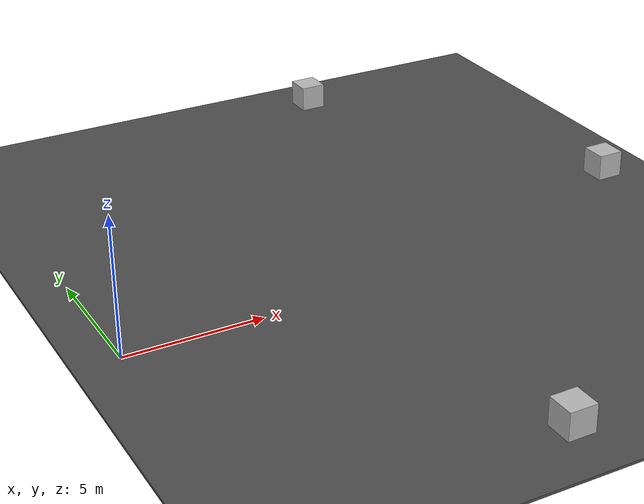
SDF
<sdf version="1.6">
 <world name="default">
  <light name="sun" type="directional">
   <pose>0 0 10 0 -0 0</pose>
   <diffuse>0.8 0.8 0.8 1</diffuse>
   <specular>0.2 0.2 0.2 1</specular>
   <attenuation>
    <range>1000</range>
    <constant>0.9</constant>
    <linear>0.01</linear>
    <quadratic>0.001</quadratic>
   </attenuation>
   <direction>-0.5 0.1 -0.9</direction>
  </light>
  <model name="ground_plane">
   <static>1</static>
   <link name="link">
    <collision name="collision">
     <geometry><plane><normal>0 0 1</normal><size>100 100</size></plane></geometry>
     <surface>
      <contact><collide_bitmask>65535</collide_bitmask></contact>
      <friction><ode><mu>100</mu><mu2>50</mu2></ode></friction>
     </surface>
    </collision>
    <visual name="visual">
     <cast_shadows>0</cast_shadows>
     <geometry><plane><normal>0 0 1</normal><size>100 100</size></plane></geometry>
     <material>
      <script><uri>file://media/materials/scripts/gazebo.material</uri><name>Gazebo/Grey</name></script>
     </material>
    </visual>
   </link>
  </model>
  <model name="asphalt_plane">
   <static>1</static>
   <link name="link">
    <collision name="collision"><geometry><box><size>200 200 0.1</size></box></geometry></collision>
    <visual name="visual">
     <cast_shadows>0</cast_shadows>
     <geometry><box><size>200 200 0.1</size></box></geometry>
     <material>
      <script>
       <uri>model://asphalt_plane/materials/scripts</uri>
       <uri>model://asphalt_plane/materials/textures</uri>
       <name>vrc/asphalt</name>
      </script>
     </material>
    </visual>
   </link>
  </model>
  <physics name="default_physics" default="0" type="ode">
   <ode>
    <solver>
     <type>quick</type>
     <iters>10</iters>
     <sor>1.3</sor>
     <use_dynamic_moi_rescaling>0</use_dynamic_moi_rescaling>
    </solver>
    <constraints>
     <cfm>0</cfm>
     <erp>0.2</erp>
     <contact_max_correcting_vel>100</contact_max_correcting_vel>
     <contact_surface_layer>0.001</contact_surface_layer>
    </constraints>
   </ode>
   <max_step_size>0.004</max_step_size>
   <real_time_factor>1</real_time_factor>
   <real_time_update_rate>250</real_time_update_rate>
  </physics>
  <gravity>0 0 -9.8066</gravity>
  <magnetic_field>6e-06 2.3e-05 -4.2e-05</magnetic_field>
  <atmosphere type="adiabatic"/>
  <scene><ambient>0.4 0.4 0.4 1</ambient><background>0.7 0.7 0.7 1</background><shadows>1</shadows></scene>
  <spherical_coordinates>
   <surface_model>EARTH_WGS84</surface_model>
   <latitude_deg>0</latitude_deg>
   <longitude_deg>0</longitude_deg>
   <elevation>0</elevation>
   <heading_deg>0</heading_deg>
  </spherical_coordinates>
  <model name="aruco_box10">
   <static>0</static>
   <link name="robot_link">
    <inertial>
     <pose>0 0 -0.5 0 -0 0</pose>
     <inertia><ixx>0.1</ixx><ixy>0</ixy><ixz>0</ixz><iyy>0.1</iyy><iyz>0</iyz><izz>0.1</izz></inertia>
     <mass>1</mass>
    </inertial>
    <collision name="body_collision"><geometry><box><size>1 1 1</size></box></geometry></collision>
    <visual name="body_visual">
     <geometry><box><size>1 1 1</size></box></geometry>
     <material>
      <script><uri>model://aruco_box10/materials/scripts/repeated.material</uri><name>repeat_aruco10</name></script>
     </material>
    </visual>
   </link>
   <pose>10 -10 0.549883 0 -0 0.010902</pose>
  </model>
  <model name="aruco_box20">
   <static>0</static>
   <link name="robot_link">
    <inertial>
     <pose>0 0 -0.5 0 -0 0</pose>
     <inertia><ixx>0.1</ixx><ixy>0</ixy><ixz>0</ixz><iyy>0.1</iyy><iyz>0</iyz><izz>0.1</izz></inertia>
     <mass>1</mass>
    </inertial>
    <collision name="body_collision"><geometry><box><size>1 1 1</size></box></geometry></collision>
    <visual name="body_visual">
     <geometry><box><size>1 1 1</size></box></geometry>
     <material>
      <script><uri>model://aruco_box20/materials/scripts/repeated.material</uri><name>repeat_aruco20</name></script>
     </material>
    </visual>
   </link>
   <pose>21.3807 3.44856 0.549883 0 -0 0.010902</pose>
  </model>
  <model name="aruco_box30">
   <static>0</static>
   <link name="robot_link">
    <inertial>
     <pose>0 0 -0.5 0 -0 0</pose>
     <inertia><ixx>0.1</ixx><ixy>0</ixy><ixz>0</ixz><iyy>0.1</iyy><iyz>0</iyz><izz>0.1</izz></inertia>
     <mass>1</mass>
    </inertial>
    <collision name="body_collision"><geometry><box><size>1 1 1</size></box></geometry></collision>
    <visual name="body_visual">
     <geometry><box><size>1 1 1</size></box></geometry>
     <material>
      <script><uri>model://aruco_box30/materials/scripts/repeated.material</uri><name>repeat_aruco30</name></script>
     </material>
    </visual>
   </link>
   <pose>14.5086 15.2041 0.549883 0 -0 0.010902</pose>
  </model>
 </world>
</sdf>
